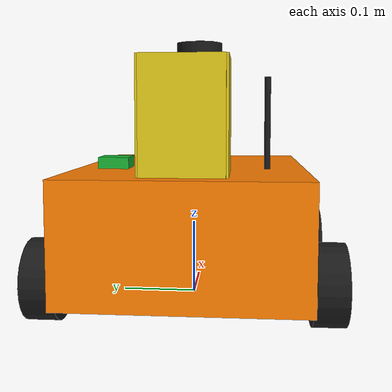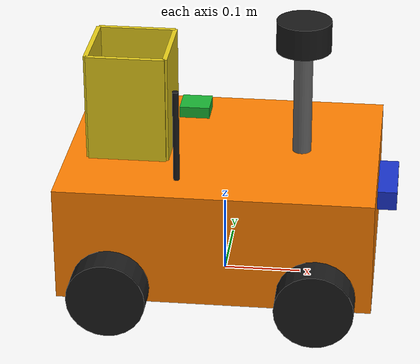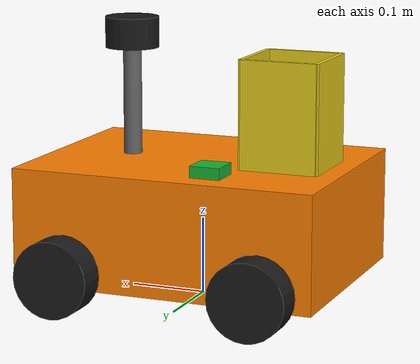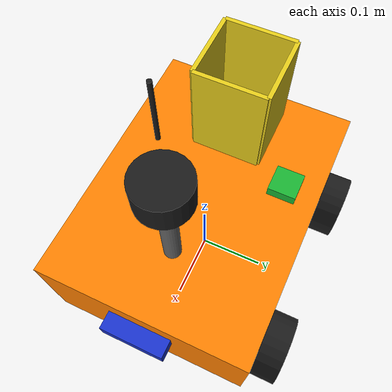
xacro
<?xml version="1.0"?>
<robot name="writer_robot" xmlns:xacro="http://www.ros.org/wiki/xacro">

  <!-- role:=writer (default: orange, beacon magazine + trapdoor)
       role:=executor (blue, treatment canister instead of the magazine);
       same base, wheels, LiDAR mast, camera, IMU for both -->
  <xacro:arg name="role" default="writer"/>
  <xacro:property name="role" value="$(arg role)"/>
  <xacro:arg name="mine" default="false"/>
  <xacro:property name="mine" value="$(arg mine)"/>

  <xacro:include filename="$(find writer_robot)/urdf/inertial_macros.xacro"/>

  <!-- ============================ PARAMETERS ============================ -->
  <xacro:property name="chassis_length"   value="0.40"/>
  <xacro:property name="chassis_width"    value="0.30"/>
  <xacro:property name="chassis_height"   value="0.15"/>
  <xacro:property name="chassis_mass"     value="3.0"/>
  <xacro:property name="ground_clearance" value="0.03"/>

  <xacro:property name="wheel_radius"     value="0.05"/>
  <xacro:property name="wheel_width"      value="0.04"/>
  <xacro:property name="wheel_mass"       value="0.30"/>
  <xacro:property name="wheel_separation" value="0.34"/>
  <xacro:property name="wheel_base"       value="0.26"/>

  <xacro:property name="chassis_z"        value="${ground_clearance + chassis_height/2 - wheel_radius}"/>
  <xacro:property name="chassis_top"      value="${chassis_z + chassis_height/2}"/>

  <xacro:property name="mag_x"            value="0.10"/>
  <xacro:property name="mag_y"            value="0.10"/>
  <xacro:property name="mag_h"            value="0.14"/>
  <xacro:property name="mag_pos_x"        value="-0.12"/>

  <xacro:property name="PI" value="3.14159265359"/>

  <!-- ============================ MATERIALS ============================ -->
  <material name="orange"><color rgba="1.0 0.5 0.0 1.0"/></material>
  <material name="black"><color rgba="0.1 0.1 0.1 1.0"/></material>
  <material name="grey"><color rgba="0.4 0.4 0.4 1.0"/></material>
  <material name="blue"><color rgba="0.1 0.2 0.8 1.0"/></material>
  <material name="green"><color rgba="0.1 0.7 0.2 1.0"/></material>
  <material name="red"><color rgba="0.8 0.1 0.1 1.0"/></material>
  <material name="yellow"><color rgba="0.9 0.8 0.1 1.0"/></material>
  <material name="white"><color rgba="0.95 0.95 0.9 1.0"/></material>
  <material name="ochre"><color rgba="0.75 0.55 0.3 1.0"/></material>

  <!-- ========================= BASE FOOTPRINT ========================= -->
  <link name="base_footprint"/>
  <joint name="base_joint" type="fixed">
    <parent link="base_footprint"/>
    <child  link="base_link"/>
    <origin xyz="0 0 ${wheel_radius}" rpy="0 0 0"/>
  </joint>

  <!-- ============================= CHASSIS ============================= -->
  <link name="base_link">
    <visual>
      <origin xyz="0 0 ${chassis_z}" rpy="0 0 0"/>
      <geometry><box size="${chassis_length} ${chassis_width} ${chassis_height}"/></geometry>
      <xacro:if value="${role == 'executor'}"><material name="blue"/></xacro:if>
      <xacro:unless value="${role == 'executor'}"><material name="orange"/></xacro:unless>
    </visual>
    <collision>
      <origin xyz="0 0 ${chassis_z}" rpy="0 0 0"/>
      <geometry><box size="${chassis_length} ${chassis_width} ${chassis_height}"/></geometry>
    </collision>
    <xacro:inertial_box mass="${chassis_mass}" x="${chassis_length}" y="${chassis_width}" z="${chassis_height}">
      <origin xyz="0 0 ${chassis_z}" rpy="0 0 0"/>
    </xacro:inertial_box>
  </link>

  <!-- ======================= WHEELS (4, skid-steer) ==================== -->
  <xacro:macro name="wheel" params="prefix x_reflect y_reflect">
    <link name="${prefix}_wheel_link">
      <visual>
        <origin xyz="0 0 0" rpy="${PI/2} 0 0"/>
        <geometry><cylinder radius="${wheel_radius}" length="${wheel_width}"/></geometry>
        <material name="black"/>
      </visual>
      <collision>
        <origin xyz="0 0 0" rpy="${PI/2} 0 0"/>
        <geometry><cylinder radius="${wheel_radius}" length="${wheel_width}"/></geometry>
      </collision>
      <xacro:inertial_cylinder mass="${wheel_mass}" radius="${wheel_radius}" length="${wheel_width}">
        <origin xyz="0 0 0" rpy="${PI/2} 0 0"/>
      </xacro:inertial_cylinder>
    </link>
    <joint name="${prefix}_wheel_joint" type="continuous">
      <parent link="base_link"/>
      <child  link="${prefix}_wheel_link"/>
      <origin xyz="${x_reflect*wheel_base/2} ${y_reflect*wheel_separation/2} 0" rpy="0 0 0"/>
      <axis xyz="0 1 0"/>
      <dynamics damping="0.05" friction="0.1"/>
    </joint>
  </xacro:macro>

  <xacro:wheel prefix="front_left"  x_reflect="1"  y_reflect="1"/>
  <xacro:wheel prefix="front_right" x_reflect="1"  y_reflect="-1"/>
  <xacro:wheel prefix="rear_left"   x_reflect="-1" y_reflect="1"/>
  <xacro:wheel prefix="rear_right"  x_reflect="-1" y_reflect="-1"/>

  <!-- ============================== LiDAR ============================== -->
  <link name="lidar_link">
    <visual><geometry><cylinder radius="0.035" length="0.04"/></geometry><material name="black"/></visual>
    <visual>
      <origin xyz="0 0 -0.09" rpy="0 0 0"/>
      <geometry><cylinder radius="0.012" length="0.14"/></geometry><material name="grey"/>
    </visual>
    <collision><geometry><cylinder radius="0.035" length="0.04"/></geometry></collision>
    <xacro:inertial_cylinder mass="0.10" radius="0.035" length="0.04">
      <origin xyz="0 0 0" rpy="0 0 0"/>
    </xacro:inertial_cylinder>
  </link>
  <joint name="lidar_joint" type="fixed">
    <parent link="base_link"/>
    <child  link="lidar_link"/>
    <origin xyz="0.10 0 ${chassis_top + 0.16}" rpy="0 0 0"/>
  </joint>

  <!-- =============================== IMU =============================== -->
  <link name="imu_link">
    <visual><geometry><box size="0.02 0.02 0.01"/></geometry><material name="red"/></visual>
    <xacro:inertial_box mass="0.02" x="0.02" y="0.02" z="0.01">
      <origin xyz="0 0 0" rpy="0 0 0"/>
    </xacro:inertial_box>
  </link>
  <joint name="imu_joint" type="fixed">
    <parent link="base_link"/>
    <child  link="imu_link"/>
    <origin xyz="0 0 ${chassis_z}" rpy="0 0 0"/>
  </joint>

  <!-- ========================= RGB-D CAMERA ========================= -->
  <link name="camera_link">
    <visual><geometry><box size="0.025 0.090 0.025"/></geometry><material name="blue"/></visual>
    <collision><geometry><box size="0.025 0.090 0.025"/></geometry></collision>
    <xacro:inertial_box mass="0.08" x="0.025" y="0.090" z="0.025">
      <origin xyz="0 0 0" rpy="0 0 0"/>
    </xacro:inertial_box>
  </link>
  <joint name="camera_joint" type="fixed">
    <parent link="base_link"/>
    <child  link="camera_link"/>
    <origin xyz="${chassis_length/2 + 0.013} 0 ${chassis_z + 0.03}" rpy="0 0 0"/>
  </joint>

  <link name="camera_link_optical"/>
  <joint name="camera_optical_joint" type="fixed">
    <parent link="camera_link"/>
    <child  link="camera_link_optical"/>
    <origin xyz="0 0 0" rpy="${-PI/2} 0 ${-PI/2}"/>
  </joint>

  <!-- ===================== GPS MODULE (last fix) ===================== -->
  <link name="gps_link">
    <visual><geometry><box size="0.04 0.04 0.015"/></geometry><material name="green"/></visual>
    <xacro:inertial_box mass="0.03" x="0.04" y="0.04" z="0.015">
      <origin xyz="0 0 0" rpy="0 0 0"/>
    </xacro:inertial_box>
  </link>
  <joint name="gps_joint" type="fixed">
    <parent link="base_link"/>
    <child  link="gps_link"/>
    <origin xyz="-0.05 0.10 ${chassis_top + 0.008}" rpy="0 0 0"/>
  </joint>

  <!-- ===================== LoRa ANTENNA ===================== -->
  <link name="lora_antenna_link">
    <visual><geometry><cylinder radius="0.004" length="0.12"/></geometry><material name="black"/></visual>
    <xacro:inertial_cylinder mass="0.01" radius="0.004" length="0.12">
      <origin xyz="0 0 0" rpy="0 0 0"/>
    </xacro:inertial_cylinder>
  </link>
  <joint name="lora_antenna_joint" type="fixed">
    <parent link="base_link"/>
    <child  link="lora_antenna_link"/>
    <origin xyz="-0.05 -0.10 ${chassis_top + 0.06}" rpy="0 0 0"/>
  </joint>

  <!-- ============ INTERNAL MASSES (battery + computer) ========= -->
  <link name="battery_link">
    <visual><geometry><box size="0.15 0.12 0.05"/></geometry><material name="grey"/></visual>
    <xacro:inertial_box mass="1.50" x="0.15" y="0.12" z="0.05">
      <origin xyz="0 0 0" rpy="0 0 0"/>
    </xacro:inertial_box>
  </link>
  <joint name="battery_joint" type="fixed">
    <parent link="base_link"/>
    <child  link="battery_link"/>
    <origin xyz="0.0 0 ${ground_clearance - wheel_radius + 0.03}" rpy="0 0 0"/>
  </joint>

  <link name="compute_link">
    <visual><geometry><box size="0.09 0.09 0.02"/></geometry><material name="green"/></visual>
    <xacro:inertial_box mass="0.30" x="0.09" y="0.09" z="0.02">
      <origin xyz="0 0 0" rpy="0 0 0"/>
    </xacro:inertial_box>
  </link>
  <joint name="compute_joint" type="fixed">
    <parent link="base_link"/>
    <child  link="compute_link"/>
    <origin xyz="0.10 0 ${chassis_z + 0.04}" rpy="0 0 0"/>
  </joint>

  <!-- ============= BEACON DEPOSITION (magazine + servo trapdoor) ======= -->
  <xacro:unless value="${role == 'executor'}">
  <link name="beacon_magazine_link">
    <visual><origin xyz="${-mag_x/2} 0 0"/><geometry><box size="0.006 ${mag_y} ${mag_h}"/></geometry><material name="yellow"/></visual>
    <visual><origin xyz="${mag_x/2} 0 0"/><geometry><box size="0.006 ${mag_y} ${mag_h}"/></geometry><material name="yellow"/></visual>
    <visual><origin xyz="0 ${mag_y/2} 0"/><geometry><box size="${mag_x} 0.006 ${mag_h}"/></geometry><material name="yellow"/></visual>
    <visual><origin xyz="0 ${-mag_y/2} 0"/><geometry><box size="${mag_x} 0.006 ${mag_h}"/></geometry><material name="yellow"/></visual>
    <collision><geometry><box size="${mag_x} ${mag_y} ${mag_h}"/></geometry></collision>
    <xacro:inertial_box mass="0.35" x="${mag_x}" y="${mag_y}" z="${mag_h}">
      <origin xyz="0 0 0" rpy="0 0 0"/>
    </xacro:inertial_box>
  </link>
  <joint name="beacon_magazine_joint" type="fixed">
    <parent link="base_link"/>
    <child  link="beacon_magazine_link"/>
    <origin xyz="${mag_pos_x} 0 ${chassis_top + mag_h/2}" rpy="0 0 0"/>
  </joint>

  <link name="trapdoor_link">
    <visual><origin xyz="${mag_x/2} 0 0"/><geometry><box size="${mag_x} ${mag_y} 0.006"/></geometry><material name="black"/></visual>
    <collision><origin xyz="${mag_x/2} 0 0"/><geometry><box size="${mag_x} ${mag_y} 0.006"/></geometry></collision>
    <xacro:inertial_box mass="0.05" x="${mag_x}" y="${mag_y}" z="0.006">
      <origin xyz="${mag_x/2} 0 0" rpy="0 0 0"/>
    </xacro:inertial_box>
  </link>
  <joint name="trapdoor_joint" type="revolute">
    <parent link="beacon_magazine_link"/>
    <child  link="trapdoor_link"/>
    <origin xyz="${-mag_x/2} 0 ${-mag_h/2}" rpy="0 0 0"/>
    <axis xyz="0 1 0"/>
    <limit lower="-1.4" upper="0.0" effort="5.0" velocity="3.0"/>
    <dynamics damping="0.05" friction="0.02"/>
  </joint>
  </xacro:unless>

  <!-- ========== EXECUTOR: treatment canister + nozzle (visual) ========== -->
  <!-- below the LiDAR scan plane, behind the camera -->
  <xacro:if value="${role == 'executor'}">
  <link name="tool_link">
    <visual>
      <geometry><cylinder radius="0.05" length="0.11"/></geometry><material name="grey"/>
    </visual>
    <visual>
      <origin xyz="0.07 0 0.035" rpy="0 ${PI/2} 0"/>
      <geometry><cylinder radius="0.012" length="0.08"/></geometry><material name="black"/>
    </visual>
    <collision><geometry><cylinder radius="0.05" length="0.11"/></geometry></collision>
    <xacro:inertial_cylinder mass="0.40" radius="0.05" length="0.11">
      <origin xyz="0 0 0" rpy="0 0 0"/>
    </xacro:inertial_cylinder>
  </link>
  <joint name="tool_joint" type="fixed">
    <parent link="base_link"/>
    <child  link="tool_link"/>
    <origin xyz="-0.10 0 ${chassis_top + 0.055}" rpy="0 0 0"/>
  </joint>
  </xacro:if>

  <!-- ============ MINE SENSOR HEAD (mine:=true, the Gafsa mine) ============ -->
  <!-- all below the LiDAR scan plane (0.34 m), none in front of the RGB-D camera,
       no collision geometry (nothing for the LiDAR self-filter to learn) -->
  <xacro:if value="${mine}">
  <!-- thermal camera (FLIR Lepton class, 57 deg) above the RGB-D camera: fire, body heat -->
  <link name="thermal_camera_link">
    <visual><geometry><box size="0.03 0.05 0.035"/></geometry><material name="red"/></visual>
    <xacro:inertial_box mass="0.03" x="0.03" y="0.05" z="0.035"><origin xyz="0 0 0" rpy="0 0 0"/></xacro:inertial_box>
  </link>
  <joint name="thermal_camera_joint" type="fixed">
    <parent link="base_link"/><child link="thermal_camera_link"/>
    <origin xyz="${chassis_length/2 - 0.02} 0 ${chassis_top + 0.02}" rpy="0 0 0"/>
  </joint>
  <!-- roof scanner: upward depth sensor, roof sag and cracks ahead -->
  <link name="roof_scanner_link">
    <visual><geometry><cylinder radius="0.022" length="0.03"/></geometry><material name="black"/></visual>
    <visual><origin xyz="0 0 0.016"/><geometry><cylinder radius="0.015" length="0.004"/></geometry><material name="blue"/></visual>
    <xacro:inertial_cylinder mass="0.04" radius="0.022" length="0.03"><origin xyz="0 0 0" rpy="0 0 0"/></xacro:inertial_cylinder>
  </link>
  <joint name="roof_scanner_joint" type="fixed">
    <parent link="base_link"/><child link="roof_scanner_link"/>
    <origin xyz="0.07 0.06 ${chassis_top + 0.015}" rpy="0 0 0"/>
  </joint>
  <!-- multi-gas detector inlet (CO, NO2, H2S, CH4 %LEL, O2): a sampling tube up high -->
  <link name="gas_inlet_link">
    <visual><geometry><cylinder radius="0.006" length="0.14"/></geometry><material name="white"/></visual>
    <visual><origin xyz="0 0 0.075"/><geometry><sphere radius="0.012"/></geometry><material name="yellow"/></visual>
    <xacro:inertial_cylinder mass="0.02" radius="0.006" length="0.14"><origin xyz="0 0 0" rpy="0 0 0"/></xacro:inertial_cylinder>
  </link>
  <joint name="gas_inlet_joint" type="fixed">
    <parent link="base_link"/><child link="gas_inlet_link"/>
    <origin xyz="-0.17 0.11 ${chassis_top + 0.07}" rpy="0 0 0"/>
  </joint>
  <!-- radon monitor + gamma probe (the ore carries uranium) -->
  <link name="radiation_monitor_link">
    <visual><geometry><box size="0.05 0.05 0.04"/></geometry><material name="yellow"/></visual>
    <xacro:inertial_box mass="0.08" x="0.05" y="0.05" z="0.04"><origin xyz="0 0 0" rpy="0 0 0"/></xacro:inertial_box>
  </link>
  <joint name="radiation_monitor_joint" type="fixed">
    <parent link="base_link"/><child link="radiation_monitor_link"/>
    <origin xyz="0.0 -0.08 ${chassis_top + 0.02}" rpy="0 0 0"/>
  </joint>
  <!-- XRF / gamma wall probe on a short arm, aimed at the gallery wall: phosphate grade -->
  <link name="wall_probe_link">
    <visual><geometry><box size="0.12 0.02 0.02"/></geometry><material name="grey"/></visual>
    <visual><origin xyz="0.065 0 0"/><geometry><box size="0.02 0.03 0.03"/></geometry><material name="ochre"/></visual>
    <xacro:inertial_box mass="0.05" x="0.12" y="0.02" z="0.02"><origin xyz="0 0 0" rpy="0 0 0"/></xacro:inertial_box>
  </link>
  <joint name="wall_probe_joint" type="fixed">
    <parent link="base_link"/><child link="wall_probe_link"/>
    <origin xyz="0.06 -0.13 ${chassis_top + 0.012}" rpy="0 0 ${-PI/2}"/>
  </joint>
  <!-- LED headlights: a mine is dark -->
  <link name="headlight_left_link">
    <visual><geometry><box size="0.012 0.04 0.02"/></geometry><material name="white"/></visual>
    <xacro:inertial_box mass="0.01" x="0.012" y="0.04" z="0.02"><origin xyz="0 0 0" rpy="0 0 0"/></xacro:inertial_box>
  </link>
  <joint name="headlight_left_joint" type="fixed">
    <parent link="base_link"/><child link="headlight_left_link"/>
    <origin xyz="${chassis_length/2 + 0.006} 0.10 ${chassis_z + 0.03}" rpy="0 0 0"/>
  </joint>
  <link name="headlight_right_link">
    <visual><geometry><box size="0.012 0.04 0.02"/></geometry><material name="white"/></visual>
    <xacro:inertial_box mass="0.01" x="0.012" y="0.04" z="0.02"><origin xyz="0 0 0" rpy="0 0 0"/></xacro:inertial_box>
  </link>
  <joint name="headlight_right_joint" type="fixed">
    <parent link="base_link"/><child link="headlight_right_link"/>
    <origin xyz="${chassis_length/2 + 0.006} -0.10 ${chassis_z + 0.03}" rpy="0 0 0"/>
  </joint>
  </xacro:if>

  <!-- =========================== GZ-SIM PLUGINS ======================= -->

  <!-- 4-wheel skid-steer differential drive -->
  <gazebo>
    <plugin filename="gz-sim-diff-drive-system" name="gz::sim::systems::DiffDrive">
      <left_joint>front_left_wheel_joint</left_joint>
      <left_joint>rear_left_wheel_joint</left_joint>
      <right_joint>front_right_wheel_joint</right_joint>
      <right_joint>rear_right_wheel_joint</right_joint>
      <wheel_separation>${wheel_separation}</wheel_separation>
      <wheel_radius>${wheel_radius}</wheel_radius>
      <topic>/cmd_vel</topic>
      <!-- wheel odometry: only used by the optional EKF (odom_source:=ekf) -->
      <odom_topic>/wheel_odom</odom_topic>
      <tf_topic>/wheel_odom_tf</tf_topic>
      <frame_id>odom</frame_id>
      <child_frame_id>base_footprint</child_frame_id>
      <odom_publish_frequency>30</odom_publish_frequency>
      <max_linear_acceleration>2.0</max_linear_acceleration>
      <min_linear_acceleration>-2.0</min_linear_acceleration>
      <max_angular_acceleration>3.0</max_angular_acceleration>
      <min_angular_acceleration>-3.0</min_angular_acceleration>
    </plugin>
  </gazebo>

  <gazebo>
    <plugin filename="gz-sim-odometry-publisher-system" name="gz::sim::systems::OdometryPublisher">
      <odom_frame>odom</odom_frame>
      <robot_base_frame>base_footprint</robot_base_frame>
      <odom_topic>/odom</odom_topic>
      <tf_topic>/odom_tf</tf_topic>
      <odom_publish_frequency>30</odom_publish_frequency>
      <dimensions>2</dimensions>
    </plugin>
  </gazebo>

  <!-- Native servo for the trapdoor (no ros2_control). Command with a
       gz.msgs.Double on /trapdoor_cmd:  0.0 = closed,  -1.2 = open. -->
  <xacro:unless value="${role == 'executor'}">
  <gazebo>
    <plugin filename="gz-sim-joint-position-controller-system"
            name="gz::sim::systems::JointPositionController">
      <joint_name>trapdoor_joint</joint_name>
      <topic>trapdoor_cmd</topic>
      <p_gain>8.0</p_gain>
      <i_gain>0.2</i_gain>
      <d_gain>0.5</d_gain>
      <cmd_max>10.0</cmd_max>
      <cmd_min>-10.0</cmd_min>
    </plugin>
  </gazebo>
  </xacro:unless>

  <!-- Publish all joint states (wheels + trapdoor) for TF / RViz -->
  <gazebo>
    <plugin filename="gz-sim-joint-state-publisher-system"
            name="gz::sim::systems::JointStatePublisher">
      <topic>joint_states</topic>
    </plugin>
  </gazebo>

  <!-- 2D LiDAR (light: 180 samples @ 8 Hz) -->
  <gazebo reference="lidar_link">
    <sensor name="lidar" type="gpu_lidar">
      <topic>scan</topic>
      <gz_frame_id>lidar_link</gz_frame_id>
      <update_rate>8</update_rate>
      <always_on>1</always_on>
      <visualize>true</visualize>
      <lidar>
        <scan>
          <horizontal>
            <samples>180</samples>
            <resolution>1</resolution>
            <min_angle>-3.14159</min_angle>
            <max_angle>3.14159</max_angle>
          </horizontal>
        </scan>
        <range><min>0.15</min><max>12.0</max><resolution>0.02</resolution></range>
        <noise><type>gaussian</type><mean>0.0</mean><stddev>0.01</stddev></noise>
      </lidar>
    </sensor>
  </gazebo>

  <!-- IMU -->
  <gazebo reference="imu_link">
    <sensor name="imu" type="imu">
      <topic>imu</topic>
      <gz_frame_id>imu_link</gz_frame_id>
      <update_rate>50</update_rate>
      <always_on>1</always_on>
    </sensor>
  </gazebo>

  <!-- RGB-D camera (light: 320x240 @ 6 Hz) -->
  <gazebo reference="camera_link">
    <sensor name="rgbd_camera" type="rgbd_camera">
      <topic>camera</topic>
      <gz_frame_id>camera_link_optical</gz_frame_id>
      <update_rate>6</update_rate>
      <always_on>1</always_on>
      <camera>
        <horizontal_fov>1.089</horizontal_fov>
        <image><width>320</width><height>240</height><format>R8G8B8</format></image>
        <clip><near>0.1</near><far>15.0</far></clip>
        <depth_camera><clip><near>0.1</near><far>15.0</far></clip></depth_camera>
      </camera>
    </sensor>
  </gazebo>

  <!-- Wheel contact tuning (lower lateral friction for smooth skid-steer turns) -->
  <xacro:macro name="wheel_gz" params="prefix">
    <gazebo reference="${prefix}_wheel_link">
      <mu1>1.0</mu1><mu2>0.7</mu2><kp>1e6</kp><kd>1.0</kd>
    </gazebo>
  </xacro:macro>
  <xacro:wheel_gz prefix="front_left"/>
  <xacro:wheel_gz prefix="front_right"/>
  <xacro:wheel_gz prefix="rear_left"/>
  <xacro:wheel_gz prefix="rear_right"/>

</robot>

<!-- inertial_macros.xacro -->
<robot xmlns:xacro="http://www.ros.org/wiki/xacro">

  <!-- Solid box centred at the link origin -->
  <xacro:macro name="inertial_box" params="mass x y z *origin">
    <inertial>
      <xacro:insert_block name="origin"/>
      <mass value="${mass}"/>
      <inertia
        ixx="${(mass/12.0)*(y*y + z*z)}" ixy="0.0" ixz="0.0"
        iyy="${(mass/12.0)*(x*x + z*z)}" iyz="0.0"
        izz="${(mass/12.0)*(x*x + y*y)}"/>
    </inertial>
  </xacro:macro>

  <!-- Solid cylinder, symmetry axis along local Z -->
  <xacro:macro name="inertial_cylinder" params="mass radius length *origin">
    <inertial>
      <xacro:insert_block name="origin"/>
      <mass value="${mass}"/>
      <inertia
        ixx="${(mass/12.0)*(3.0*radius*radius + length*length)}" ixy="0.0" ixz="0.0"
        iyy="${(mass/12.0)*(3.0*radius*radius + length*length)}" iyz="0.0"
        izz="${(mass/2.0)*(radius*radius)}"/>
    </inertial>
  </xacro:macro>

  <!-- Solid sphere -->
  <xacro:macro name="inertial_sphere" params="mass radius *origin">
    <inertial>
      <xacro:insert_block name="origin"/>
      <mass value="${mass}"/>
      <inertia
        ixx="${(2.0/5.0)*mass*radius*radius}" ixy="0.0" ixz="0.0"
        iyy="${(2.0/5.0)*mass*radius*radius}" iyz="0.0"
        izz="${(2.0/5.0)*mass*radius*radius}"/>
    </inertial>
  </xacro:macro>

</robot>
